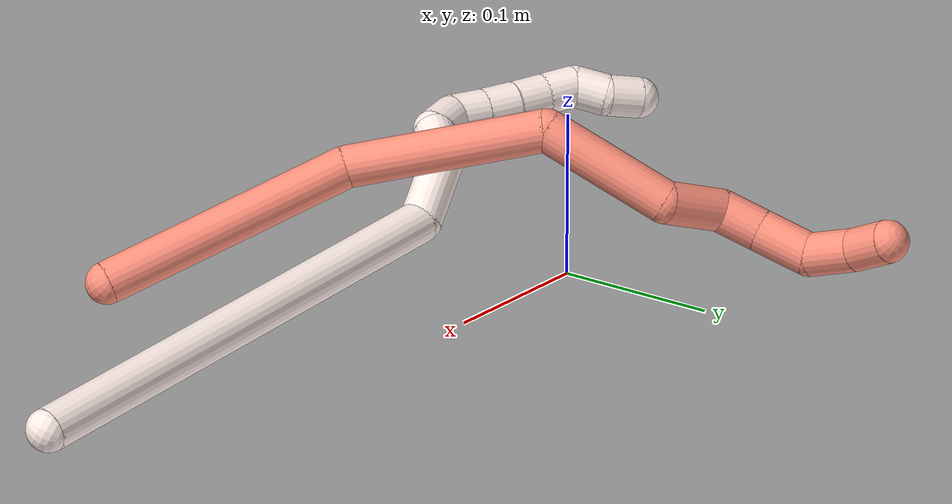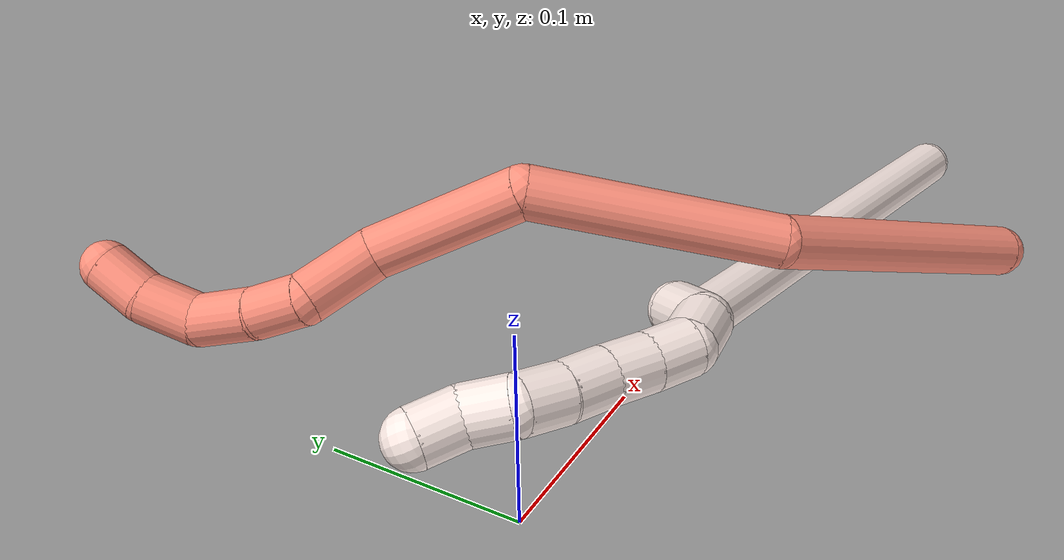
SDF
<sdf version="1.7">
 <world name="default">
  <model name="11">
   <static>0</static>
   <link name="11">
    <collision name="collision-cylinder-e_1_1_4">
     <pose>-0.129999 0.020796 -0.059951 -2.8077 -1.1167 2.61459</pose>
     <geometry><cylinder><radius>0.0125</radius><length>0.28932</length></cylinder></geometry>
     <surface>
      <friction><ode><mu>1.16</mu><mu2>1.16</mu2><slip1>0</slip1><slip2>0</slip2></ode></friction>
      <contact><ode><kp>1e+06</kp><kd>1</kd><max_vel>0</max_vel><min_depth>0.001</min_depth></ode></contact>
     </surface>
    </collision>
    <visual name="visual-cylinder-e_1_1_4">
     <pose>-0.129999 0.020796 -0.059951 -2.8077 -1.1167 2.61459</pose>
     <geometry><cylinder><radius>0.0125</radius><length>0.28932</length></cylinder></geometry>
     <material><ambient>1 0.933333 0.909804 1</ambient></material>
    </visual>
    <collision name="collision-cylinder-e_2_4_5">
     <pose>-0.278462 0.051657 -0.116763 -1.26849 -1.0519 0.807177</pose>
     <geometry><cylinder><radius>0.0125</radius><length>0.042523</length></cylinder></geometry>
     <surface>
      <friction><ode><mu>1.16</mu><mu2>1.16</mu2><slip1>0</slip1><slip2>0</slip2></ode></friction>
      <contact><ode><kp>1e+06</kp><kd>1</kd><max_vel>0</max_vel><min_depth>0.001</min_depth></ode></contact>
     </surface>
    </collision>
    <visual name="visual-cylinder-e_2_4_5">
     <pose>-0.278462 0.051657 -0.116763 -1.26849 -1.0519 0.807177</pose>
     <geometry><cylinder><radius>0.0125</radius><length>0.042523</length></cylinder></geometry>
     <material><ambient>1 0.933333 0.909804 1</ambient></material>
    </visual>
    <collision name="collision-cylinder-e_3_5_6">
     <pose>-0.307627 0.060609 -0.107226 0.172423 -1.02542 -0.097225</pose>
     <geometry><cylinder><radius>0.0125</radius><length>0.025039</length></cylinder></geometry>
     <surface>
      <friction><ode><mu>1.16</mu><mu2>1.16</mu2><slip1>0</slip1><slip2>0</slip2></ode></friction>
      <contact><ode><kp>1e+06</kp><kd>1</kd><max_vel>0</max_vel><min_depth>0.001</min_depth></ode></contact>
     </surface>
    </collision>
    <visual name="visual-cylinder-e_3_5_6">
     <pose>-0.307627 0.060609 -0.107226 0.172423 -1.02542 -0.097225</pose>
     <geometry><cylinder><radius>0.0125</radius><length>0.025039</length></cylinder></geometry>
     <material><ambient>1 0.933333 0.909804 1</ambient></material>
    </visual>
    <collision name="collision-cylinder-e_4_6_7">
     <pose>-0.329246 0.059307 -0.103417 3.06917 -1.33735 -3.04996</pose>
     <geometry><cylinder><radius>0.0125</radius><length>0.02244</length></cylinder></geometry>
     <surface>
      <friction><ode><mu>1.16</mu><mu2>1.16</mu2><slip1>0</slip1><slip2>0</slip2></ode></friction>
      <contact><ode><kp>1e+06</kp><kd>1</kd><max_vel>0</max_vel><min_depth>0.001</min_depth></ode></contact>
     </surface>
    </collision>
    <visual name="visual-cylinder-e_4_6_7">
     <pose>-0.329246 0.059307 -0.103417 3.06917 -1.33735 -3.04996</pose>
     <geometry><cylinder><radius>0.0125</radius><length>0.02244</length></cylinder></geometry>
     <material><ambient>1 0.933333 0.909804 1</ambient></material>
    </visual>
    <collision name="collision-cylinder-e_5_7_8">
     <pose>-0.34696 0.061388 -0.113111 -2.83247 -0.73901 2.37663</pose>
     <geometry><cylinder><radius>0.0125</radius><length>0.020184</length></cylinder></geometry>
     <surface>
      <friction><ode><mu>1.16</mu><mu2>1.16</mu2><slip1>0</slip1><slip2>0</slip2></ode></friction>
      <contact><ode><kp>1e+06</kp><kd>1</kd><max_vel>0</max_vel><min_depth>0.001</min_depth></ode></contact>
     </surface>
    </collision>
    <visual name="visual-cylinder-e_5_7_8">
     <pose>-0.34696 0.061388 -0.113111 -2.83247 -0.73901 2.37663</pose>
     <geometry><cylinder><radius>0.0125</radius><length>0.020184</length></cylinder></geometry>
     <material><ambient>1 0.933333 0.909804 1</ambient></material>
    </visual>
    <collision name="collision-cylinder-e_6_8_9">
     <pose>-0.360613 0.066371 -0.127106 -2.76635 -0.746938 2.23926</pose>
     <geometry><cylinder><radius>0.0125</radius><length>0.020182</length></cylinder></geometry>
     <surface>
      <friction><ode><mu>1.16</mu><mu2>1.16</mu2><slip1>0</slip1><slip2>0</slip2></ode></friction>
      <contact><ode><kp>1e+06</kp><kd>1</kd><max_vel>0</max_vel><min_depth>0.001</min_depth></ode></contact>
     </surface>
    </collision>
    <visual name="visual-cylinder-e_6_8_9">
     <pose>-0.360613 0.066371 -0.127106 -2.76635 -0.746938 2.23926</pose>
     <geometry><cylinder><radius>0.0125</radius><length>0.020182</length></cylinder></geometry>
     <material><ambient>1 0.933333 0.909804 1</ambient></material>
    </visual>
    <collision name="collision-cylinder-e_7_9_10">
     <pose>-0.374732 0.071501 -0.140504 -2.78618 -0.808041 2.3462</pose>
     <geometry><cylinder><radius>0.0125</radius><length>0.020094</length></cylinder></geometry>
     <surface>
      <friction><ode><mu>1.16</mu><mu2>1.16</mu2><slip1>0</slip1><slip2>0</slip2></ode></friction>
      <contact><ode><kp>1e+06</kp><kd>1</kd><max_vel>0</max_vel><min_depth>0.001</min_depth></ode></contact>
     </surface>
    </collision>
    <visual name="visual-cylinder-e_7_9_10">
     <pose>-0.374732 0.071501 -0.140504 -2.78618 -0.808041 2.3462</pose>
     <geometry><cylinder><radius>0.0125</radius><length>0.020094</length></cylinder></geometry>
     <material><ambient>1 0.933333 0.909804 1</ambient></material>
    </visual>
    <collision name="collision-cylinder-e_8_10_11">
     <pose>-0.388757 0.077073 -0.153802 -2.70638 -0.734417 2.0982</pose>
     <geometry><cylinder><radius>0.0125</radius><length>0.020178</length></cylinder></geometry>
     <surface>
      <friction><ode><mu>1.16</mu><mu2>1.16</mu2><slip1>0</slip1><slip2>0</slip2></ode></friction>
      <contact><ode><kp>1e+06</kp><kd>1</kd><max_vel>0</max_vel><min_depth>0.001</min_depth></ode></contact>
     </surface>
    </collision>
    <visual name="visual-cylinder-e_8_10_11">
     <pose>-0.388757 0.077073 -0.153802 -2.70638 -0.734417 2.0982</pose>
     <geometry><cylinder><radius>0.0125</radius><length>0.020178</length></cylinder></geometry>
     <material><ambient>1 0.933333 0.909804 1</ambient></material>
    </visual>
    <collision name="collision-cylinder-e_9_11_12">
     <pose>-0.396568 0.082346 -0.170327 -2.92763 -0.105049 0.910491</pose>
     <geometry><cylinder><radius>0.0125</radius><length>0.020036</length></cylinder></geometry>
     <surface>
      <friction><ode><mu>1.16</mu><mu2>1.16</mu2><slip1>0</slip1><slip2>0</slip2></ode></friction>
      <contact><ode><kp>1e+06</kp><kd>1</kd><max_vel>0</max_vel><min_depth>0.001</min_depth></ode></contact>
     </surface>
    </collision>
    <visual name="visual-cylinder-e_9_11_12">
     <pose>-0.396568 0.082346 -0.170327 -2.92763 -0.105049 0.910491</pose>
     <geometry><cylinder><radius>0.0125</radius><length>0.020036</length></cylinder></geometry>
     <material><ambient>1 0.933333 0.909804 1</ambient></material>
    </visual>
    <collision name="collision-cylinder-e_10_12_2">
     <pose>-0.402648 0.085632 -0.188629 -3.00572 -0.526833 2.64732</pose>
     <geometry><cylinder><radius>0.0125</radius><length>0.020005</length></cylinder></geometry>
     <surface>
      <friction><ode><mu>1.16</mu><mu2>1.16</mu2><slip1>0</slip1><slip2>0</slip2></ode></friction>
      <contact><ode><kp>1e+06</kp><kd>1</kd><max_vel>0</max_vel><min_depth>0.001</min_depth></ode></contact>
     </surface>
    </collision>
    <visual name="visual-cylinder-e_10_12_2">
     <pose>-0.402648 0.085632 -0.188629 -3.00572 -0.526833 2.64732</pose>
     <geometry><cylinder><radius>0.0125</radius><length>0.020005</length></cylinder></geometry>
     <material><ambient>1 0.933333 0.909804 1</ambient></material>
    </visual>
    <collision name="collision-sphere-2">
     <pose>-0.407677 0.086804 -0.197196 0 -0 0</pose>
     <geometry><sphere><radius>0.0125</radius></sphere></geometry>
     <surface>
      <friction><ode><mu>1.16</mu><mu2>1.16</mu2><slip1>0</slip1><slip2>0</slip2></ode></friction>
      <contact><ode><kp>1e+06</kp><kd>1</kd><max_vel>0</max_vel><min_depth>0.001</min_depth></ode></contact>
     </surface>
    </collision>
    <visual name="visual-sphere-2">
     <pose>-0.407677 0.086804 -0.197196 0 -0 0</pose>
     <geometry><sphere><radius>0.0125</radius></sphere></geometry>
     <material><ambient>1 0.933333 0.909804 1</ambient></material>
    </visual>
    <collision name="collision-sphere-12">
     <pose>-0.397619 0.084461 -0.180063 0 -0 0</pose>
     <geometry><sphere><radius>0.0125</radius></sphere></geometry>
     <surface>
      <friction><ode><mu>1.16</mu><mu2>1.16</mu2><slip1>0</slip1><slip2>0</slip2></ode></friction>
      <contact><ode><kp>1e+06</kp><kd>1</kd><max_vel>0</max_vel><min_depth>0.001</min_depth></ode></contact>
     </surface>
    </collision>
    <visual name="visual-sphere-12">
     <pose>-0.397619 0.084461 -0.180063 0 -0 0</pose>
     <geometry><sphere><radius>0.0125</radius></sphere></geometry>
     <material><ambient>1 0.933333 0.909804 1</ambient></material>
    </visual>
    <collision name="collision-sphere-11">
     <pose>-0.395518 0.08023 -0.160592 0 -0 0</pose>
     <geometry><sphere><radius>0.0125</radius></sphere></geometry>
     <surface>
      <friction><ode><mu>1.16</mu><mu2>1.16</mu2><slip1>0</slip1><slip2>0</slip2></ode></friction>
      <contact><ode><kp>1e+06</kp><kd>1</kd><max_vel>0</max_vel><min_depth>0.001</min_depth></ode></contact>
     </surface>
    </collision>
    <visual name="visual-sphere-11">
     <pose>-0.395518 0.08023 -0.160592 0 -0 0</pose>
     <geometry><sphere><radius>0.0125</radius></sphere></geometry>
     <material><ambient>1 0.933333 0.909804 1</ambient></material>
    </visual>
    <collision name="collision-sphere-10">
     <pose>-0.381996 0.073916 -0.147012 0 -0 0</pose>
     <geometry><sphere><radius>0.0125</radius></sphere></geometry>
     <surface>
      <friction><ode><mu>1.16</mu><mu2>1.16</mu2><slip1>0</slip1><slip2>0</slip2></ode></friction>
      <contact><ode><kp>1e+06</kp><kd>1</kd><max_vel>0</max_vel><min_depth>0.001</min_depth></ode></contact>
     </surface>
    </collision>
    <visual name="visual-sphere-10">
     <pose>-0.381996 0.073916 -0.147012 0 -0 0</pose>
     <geometry><sphere><radius>0.0125</radius></sphere></geometry>
     <material><ambient>1 0.933333 0.909804 1</ambient></material>
    </visual>
    <collision name="collision-sphere-9">
     <pose>-0.367469 0.069085 -0.133996 0 -0 0</pose>
     <geometry><sphere><radius>0.0125</radius></sphere></geometry>
     <surface>
      <friction><ode><mu>1.16</mu><mu2>1.16</mu2><slip1>0</slip1><slip2>0</slip2></ode></friction>
      <contact><ode><kp>1e+06</kp><kd>1</kd><max_vel>0</max_vel><min_depth>0.001</min_depth></ode></contact>
     </surface>
    </collision>
    <visual name="visual-sphere-9">
     <pose>-0.367469 0.069085 -0.133996 0 -0 0</pose>
     <geometry><sphere><radius>0.0125</radius></sphere></geometry>
     <material><ambient>1 0.933333 0.909804 1</ambient></material>
    </visual>
    <collision name="collision-sphere-4">
     <pose>-0.259999 0.041591 -0.119902 0 -0 0</pose>
     <geometry><sphere><radius>0.0125</radius></sphere></geometry>
     <surface>
      <friction><ode><mu>1.16</mu><mu2>1.16</mu2><slip1>0</slip1><slip2>0</slip2></ode></friction>
      <contact><ode><kp>1e+06</kp><kd>1</kd><max_vel>0</max_vel><min_depth>0.001</min_depth></ode></contact>
     </surface>
    </collision>
    <visual name="visual-sphere-4">
     <pose>-0.259999 0.041591 -0.119902 0 -0 0</pose>
     <geometry><sphere><radius>0.0125</radius></sphere></geometry>
     <material><ambient>1 0.933333 0.909804 1</ambient></material>
    </visual>
    <collision name="collision-sphere-1">
     <geometry><sphere><radius>0.0125</radius></sphere></geometry>
     <surface>
      <friction><ode><mu>1.16</mu><mu2>1.16</mu2><slip1>0</slip1><slip2>0</slip2></ode></friction>
      <contact><ode><kp>1e+06</kp><kd>1</kd><max_vel>0</max_vel><min_depth>0.001</min_depth></ode></contact>
     </surface>
    </collision>
    <visual name="visual-sphere-1">
     <geometry><sphere><radius>0.0125</radius></sphere></geometry>
     <material><ambient>1 0.933333 0.909804 1</ambient></material>
    </visual>
    <collision name="collision-sphere-8">
     <pose>-0.353757 0.063658 -0.120217 0 -0 0</pose>
     <geometry><sphere><radius>0.0125</radius></sphere></geometry>
     <surface>
      <friction><ode><mu>1.16</mu><mu2>1.16</mu2><slip1>0</slip1><slip2>0</slip2></ode></friction>
      <contact><ode><kp>1e+06</kp><kd>1</kd><max_vel>0</max_vel><min_depth>0.001</min_depth></ode></contact>
     </surface>
    </collision>
    <visual name="visual-sphere-8">
     <pose>-0.353757 0.063658 -0.120217 0 -0 0</pose>
     <geometry><sphere><radius>0.0125</radius></sphere></geometry>
     <material><ambient>1 0.933333 0.909804 1</ambient></material>
    </visual>
    <collision name="collision-sphere-5">
     <pose>-0.296924 0.061723 -0.113624 0 -0 0</pose>
     <geometry><sphere><radius>0.0125</radius></sphere></geometry>
     <surface>
      <friction><ode><mu>1.16</mu><mu2>1.16</mu2><slip1>0</slip1><slip2>0</slip2></ode></friction>
      <contact><ode><kp>1e+06</kp><kd>1</kd><max_vel>0</max_vel><min_depth>0.001</min_depth></ode></contact>
     </surface>
    </collision>
    <visual name="visual-sphere-5">
     <pose>-0.296924 0.061723 -0.113624 0 -0 0</pose>
     <geometry><sphere><radius>0.0125</radius></sphere></geometry>
     <material><ambient>1 0.933333 0.909804 1</ambient></material>
    </visual>
    <collision name="collision-sphere-6">
     <pose>-0.318331 0.059495 -0.100828 0 -0 0</pose>
     <geometry><sphere><radius>0.0125</radius></sphere></geometry>
     <surface>
      <friction><ode><mu>1.16</mu><mu2>1.16</mu2><slip1>0</slip1><slip2>0</slip2></ode></friction>
      <contact><ode><kp>1e+06</kp><kd>1</kd><max_vel>0</max_vel><min_depth>0.001</min_depth></ode></contact>
     </surface>
    </collision>
    <visual name="visual-sphere-6">
     <pose>-0.318331 0.059495 -0.100828 0 -0 0</pose>
     <geometry><sphere><radius>0.0125</radius></sphere></geometry>
     <material><ambient>1 0.933333 0.909804 1</ambient></material>
    </visual>
    <collision name="collision-sphere-7">
     <pose>-0.340162 0.059119 -0.106006 0 -0 0</pose>
     <geometry><sphere><radius>0.0125</radius></sphere></geometry>
     <surface>
      <friction><ode><mu>1.16</mu><mu2>1.16</mu2><slip1>0</slip1><slip2>0</slip2></ode></friction>
      <contact><ode><kp>1e+06</kp><kd>1</kd><max_vel>0</max_vel><min_depth>0.001</min_depth></ode></contact>
     </surface>
    </collision>
    <visual name="visual-sphere-7">
     <pose>-0.340162 0.059119 -0.106006 0 -0 0</pose>
     <geometry><sphere><radius>0.0125</radius></sphere></geometry>
     <material><ambient>1 0.933333 0.909804 1</ambient></material>
    </visual>
    <inertial>
     <pose>-0.220398 0.03999 -0.090554 0 -0 0</pose>
     <mass>0.5</mass>
     <inertia>
      <ixx>-0.000345</ixx>
      <ixy>0</ixy>
      <ixz>0</ixz>
      <iyy>0.002436</iyy>
      <iyz>0</iyz>
      <izz>0.001527</izz>
     </inertia>
    </inertial>
   </link>
   <pose>0.383001 -0.065185 0.011478 1.0813 0.243458 0.340668</pose>
  </model>
  <model name="16">
   <static>0</static>
   <link name="16">
    <collision name="collision-cylinder-e_1_1_4">
     <pose>-0.066806 0.009936 0.036569 -0.265304 -1.05482 0.155125</pose>
     <geometry><cylinder><radius>0.0125</radius><length>0.15361</length></cylinder></geometry>
     <surface>
      <friction><ode><mu>1.16</mu><mu2>1.16</mu2><slip1>0</slip1><slip2>0</slip2></ode></friction>
      <contact><ode><kp>1e+06</kp><kd>1</kd><max_vel>0</max_vel><min_depth>0.001</min_depth></ode></contact>
     </surface>
    </collision>
    <visual name="visual-cylinder-e_1_1_4">
     <pose>-0.066806 0.009936 0.036569 -0.265304 -1.05482 0.155125</pose>
     <geometry><cylinder><radius>0.0125</radius><length>0.15361</length></cylinder></geometry>
     <material><ambient>1 0.576471 0.494118 1</ambient></material>
    </visual>
    <collision name="collision-cylinder-e_2_4_5">
     <pose>-0.166584 0.044042 0.116519 -0.508317 -0.586126 0.156456</pose>
     <geometry><cylinder><radius>0.0125</radius><length>0.11922</length></cylinder></geometry>
     <surface>
      <friction><ode><mu>1.16</mu><mu2>1.16</mu2><slip1>0</slip1><slip2>0</slip2></ode></friction>
      <contact><ode><kp>1e+06</kp><kd>1</kd><max_vel>0</max_vel><min_depth>0.001</min_depth></ode></contact>
     </surface>
    </collision>
    <visual name="visual-cylinder-e_2_4_5">
     <pose>-0.166584 0.044042 0.116519 -0.508317 -0.586126 0.156456</pose>
     <geometry><cylinder><radius>0.0125</radius><length>0.11922</length></cylinder></geometry>
     <material><ambient>1 0.576471 0.494118 1</ambient></material>
    </visual>
    <collision name="collision-cylinder-e_3_5_6">
     <pose>-0.211058 0.104122 0.171443 -1.25981 -0.295954 0.216481</pose>
     <geometry><cylinder><radius>0.0125</radius><length>0.078867</length></cylinder></geometry>
     <surface>
      <friction><ode><mu>1.16</mu><mu2>1.16</mu2><slip1>0</slip1><slip2>0</slip2></ode></friction>
      <contact><ode><kp>1e+06</kp><kd>1</kd><max_vel>0</max_vel><min_depth>0.001</min_depth></ode></contact>
     </surface>
    </collision>
    <visual name="visual-cylinder-e_3_5_6">
     <pose>-0.211058 0.104122 0.171443 -1.25981 -0.295954 0.216481</pose>
     <geometry><cylinder><radius>0.0125</radius><length>0.078867</length></cylinder></geometry>
     <material><ambient>1 0.576471 0.494118 1</ambient></material>
    </visual>
    <collision name="collision-cylinder-e_4_6_7">
     <pose>-0.238298 0.150687 0.183452 -1.52699 -0.975266 0.939439</pose>
     <geometry><cylinder><radius>0.0125</radius><length>0.038024</length></cylinder></geometry>
     <surface>
      <friction><ode><mu>1.16</mu><mu2>1.16</mu2><slip1>0</slip1><slip2>0</slip2></ode></friction>
      <contact><ode><kp>1e+06</kp><kd>1</kd><max_vel>0</max_vel><min_depth>0.001</min_depth></ode></contact>
     </surface>
    </collision>
    <visual name="visual-cylinder-e_4_6_7">
     <pose>-0.238298 0.150687 0.183452 -1.52699 -0.975266 0.939439</pose>
     <geometry><cylinder><radius>0.0125</radius><length>0.038024</length></cylinder></geometry>
     <material><ambient>1 0.576471 0.494118 1</ambient></material>
    </visual>
    <collision name="collision-cylinder-e_5_7_8">
     <pose>-0.258063 0.17255 0.188733 -1.16508 -0.318787 0.211028</pose>
     <geometry><cylinder><radius>0.0125</radius><length>0.025692</length></cylinder></geometry>
     <surface>
      <friction><ode><mu>1.16</mu><mu2>1.16</mu2><slip1>0</slip1><slip2>0</slip2></ode></friction>
      <contact><ode><kp>1e+06</kp><kd>1</kd><max_vel>0</max_vel><min_depth>0.001</min_depth></ode></contact>
     </surface>
    </collision>
    <visual name="visual-cylinder-e_5_7_8">
     <pose>-0.258063 0.17255 0.188733 -1.16508 -0.318787 0.211028</pose>
     <geometry><cylinder><radius>0.0125</radius><length>0.025692</length></cylinder></geometry>
     <material><ambient>1 0.576471 0.494118 1</ambient></material>
    </visual>
    <collision name="collision-cylinder-e_6_8_9">
     <pose>-0.265139 0.197386 0.201362 -1.05019 -0.191751 0.111317</pose>
     <geometry><cylinder><radius>0.0125</radius><length>0.032004</length></cylinder></geometry>
     <surface>
      <friction><ode><mu>1.16</mu><mu2>1.16</mu2><slip1>0</slip1><slip2>0</slip2></ode></friction>
      <contact><ode><kp>1e+06</kp><kd>1</kd><max_vel>0</max_vel><min_depth>0.001</min_depth></ode></contact>
     </surface>
    </collision>
    <visual name="visual-cylinder-e_6_8_9">
     <pose>-0.265139 0.197386 0.201362 -1.05019 -0.191751 0.111317</pose>
     <geometry><cylinder><radius>0.0125</radius><length>0.032004</length></cylinder></geometry>
     <material><ambient>1 0.576471 0.494118 1</ambient></material>
    </visual>
    <collision name="collision-cylinder-e_7_9_10">
     <pose>-0.272188 0.216933 0.221354 -0.452441 -0.287186 0.066532</pose>
     <geometry><cylinder><radius>0.0125</radius><length>0.028239</length></cylinder></geometry>
     <surface>
      <friction><ode><mu>1.16</mu><mu2>1.16</mu2><slip1>0</slip1><slip2>0</slip2></ode></friction>
      <contact><ode><kp>1e+06</kp><kd>1</kd><max_vel>0</max_vel><min_depth>0.001</min_depth></ode></contact>
     </surface>
    </collision>
    <visual name="visual-cylinder-e_7_9_10">
     <pose>-0.272188 0.216933 0.221354 -0.452441 -0.287186 0.066532</pose>
     <geometry><cylinder><radius>0.0125</radius><length>0.028239</length></cylinder></geometry>
     <material><ambient>1 0.576471 0.494118 1</ambient></material>
    </visual>
    <collision name="collision-cylinder-e_8_10_2">
     <pose>-0.277184 0.225993 0.24525 -0.261789 -0.081969 0.010797</pose>
     <geometry><cylinder><radius>0.0125</radius><length>0.024343</length></cylinder></geometry>
     <surface>
      <friction><ode><mu>1.16</mu><mu2>1.16</mu2><slip1>0</slip1><slip2>0</slip2></ode></friction>
      <contact><ode><kp>1e+06</kp><kd>1</kd><max_vel>0</max_vel><min_depth>0.001</min_depth></ode></contact>
     </surface>
    </collision>
    <visual name="visual-cylinder-e_8_10_2">
     <pose>-0.277184 0.225993 0.24525 -0.261789 -0.081969 0.010797</pose>
     <geometry><cylinder><radius>0.0125</radius><length>0.024343</length></cylinder></geometry>
     <material><ambient>1 0.576471 0.494118 1</ambient></material>
    </visual>
    <collision name="collision-sphere-2">
     <pose>-0.278181 0.229132 0.256967 0 -0 0</pose>
     <geometry><sphere><radius>0.0125</radius></sphere></geometry>
     <surface>
      <friction><ode><mu>1.16</mu><mu2>1.16</mu2><slip1>0</slip1><slip2>0</slip2></ode></friction>
      <contact><ode><kp>1e+06</kp><kd>1</kd><max_vel>0</max_vel><min_depth>0.001</min_depth></ode></contact>
     </surface>
    </collision>
    <visual name="visual-sphere-2">
     <pose>-0.278181 0.229132 0.256967 0 -0 0</pose>
     <geometry><sphere><radius>0.0125</radius></sphere></geometry>
     <material><ambient>1 0.576471 0.494118 1</ambient></material>
    </visual>
    <collision name="collision-sphere-10">
     <pose>-0.276188 0.222853 0.233533 0 -0 0</pose>
     <geometry><sphere><radius>0.0125</radius></sphere></geometry>
     <surface>
      <friction><ode><mu>1.16</mu><mu2>1.16</mu2><slip1>0</slip1><slip2>0</slip2></ode></friction>
      <contact><ode><kp>1e+06</kp><kd>1</kd><max_vel>0</max_vel><min_depth>0.001</min_depth></ode></contact>
     </surface>
    </collision>
    <visual name="visual-sphere-10">
     <pose>-0.276188 0.222853 0.233533 0 -0 0</pose>
     <geometry><sphere><radius>0.0125</radius></sphere></geometry>
     <material><ambient>1 0.576471 0.494118 1</ambient></material>
    </visual>
    <collision name="collision-sphere-9">
     <pose>-0.268189 0.211014 0.209175 0 -0 0</pose>
     <geometry><sphere><radius>0.0125</radius></sphere></geometry>
     <surface>
      <friction><ode><mu>1.16</mu><mu2>1.16</mu2><slip1>0</slip1><slip2>0</slip2></ode></friction>
      <contact><ode><kp>1e+06</kp><kd>1</kd><max_vel>0</max_vel><min_depth>0.001</min_depth></ode></contact>
     </surface>
    </collision>
    <visual name="visual-sphere-9">
     <pose>-0.268189 0.211014 0.209175 0 -0 0</pose>
     <geometry><sphere><radius>0.0125</radius></sphere></geometry>
     <material><ambient>1 0.576471 0.494118 1</ambient></material>
    </visual>
    <collision name="collision-sphere-4">
     <pose>-0.133612 0.019872 0.073138 0 -0 0</pose>
     <geometry><sphere><radius>0.0125</radius></sphere></geometry>
     <surface>
      <friction><ode><mu>1.16</mu><mu2>1.16</mu2><slip1>0</slip1><slip2>0</slip2></ode></friction>
      <contact><ode><kp>1e+06</kp><kd>1</kd><max_vel>0</max_vel><min_depth>0.001</min_depth></ode></contact>
     </surface>
    </collision>
    <visual name="visual-sphere-4">
     <pose>-0.133612 0.019872 0.073138 0 -0 0</pose>
     <geometry><sphere><radius>0.0125</radius></sphere></geometry>
     <material><ambient>1 0.576471 0.494118 1</ambient></material>
    </visual>
    <collision name="collision-sphere-1">
     <geometry><sphere><radius>0.0125</radius></sphere></geometry>
     <surface>
      <friction><ode><mu>1.16</mu><mu2>1.16</mu2><slip1>0</slip1><slip2>0</slip2></ode></friction>
      <contact><ode><kp>1e+06</kp><kd>1</kd><max_vel>0</max_vel><min_depth>0.001</min_depth></ode></contact>
     </surface>
    </collision>
    <visual name="visual-sphere-1">
     <geometry><sphere><radius>0.0125</radius></sphere></geometry>
     <material><ambient>1 0.576471 0.494118 1</ambient></material>
    </visual>
    <collision name="collision-sphere-8">
     <pose>-0.26209 0.183758 0.193548 0 -0 0</pose>
     <geometry><sphere><radius>0.0125</radius></sphere></geometry>
     <surface>
      <friction><ode><mu>1.16</mu><mu2>1.16</mu2><slip1>0</slip1><slip2>0</slip2></ode></friction>
      <contact><ode><kp>1e+06</kp><kd>1</kd><max_vel>0</max_vel><min_depth>0.001</min_depth></ode></contact>
     </surface>
    </collision>
    <visual name="visual-sphere-8">
     <pose>-0.26209 0.183758 0.193548 0 -0 0</pose>
     <geometry><sphere><radius>0.0125</radius></sphere></geometry>
     <material><ambient>1 0.576471 0.494118 1</ambient></material>
    </visual>
    <collision name="collision-sphere-5">
     <pose>-0.199557 0.068212 0.159901 0 -0 0</pose>
     <geometry><sphere><radius>0.0125</radius></sphere></geometry>
     <surface>
      <friction><ode><mu>1.16</mu><mu2>1.16</mu2><slip1>0</slip1><slip2>0</slip2></ode></friction>
      <contact><ode><kp>1e+06</kp><kd>1</kd><max_vel>0</max_vel><min_depth>0.001</min_depth></ode></contact>
     </surface>
    </collision>
    <visual name="visual-sphere-5">
     <pose>-0.199557 0.068212 0.159901 0 -0 0</pose>
     <geometry><sphere><radius>0.0125</radius></sphere></geometry>
     <material><ambient>1 0.576471 0.494118 1</ambient></material>
    </visual>
    <collision name="collision-sphere-6">
     <pose>-0.222559 0.140032 0.182985 0 -0 0</pose>
     <geometry><sphere><radius>0.0125</radius></sphere></geometry>
     <surface>
      <friction><ode><mu>1.16</mu><mu2>1.16</mu2><slip1>0</slip1><slip2>0</slip2></ode></friction>
      <contact><ode><kp>1e+06</kp><kd>1</kd><max_vel>0</max_vel><min_depth>0.001</min_depth></ode></contact>
     </surface>
    </collision>
    <visual name="visual-sphere-6">
     <pose>-0.222559 0.140032 0.182985 0 -0 0</pose>
     <geometry><sphere><radius>0.0125</radius></sphere></geometry>
     <material><ambient>1 0.576471 0.494118 1</ambient></material>
    </visual>
    <collision name="collision-sphere-7">
     <pose>-0.254037 0.161341 0.183919 0 -0 0</pose>
     <geometry><sphere><radius>0.0125</radius></sphere></geometry>
     <surface>
      <friction><ode><mu>1.16</mu><mu2>1.16</mu2><slip1>0</slip1><slip2>0</slip2></ode></friction>
      <contact><ode><kp>1e+06</kp><kd>1</kd><max_vel>0</max_vel><min_depth>0.001</min_depth></ode></contact>
     </surface>
    </collision>
    <visual name="visual-sphere-7">
     <pose>-0.254037 0.161341 0.183919 0 -0 0</pose>
     <geometry><sphere><radius>0.0125</radius></sphere></geometry>
     <material><ambient>1 0.576471 0.494118 1</ambient></material>
    </visual>
    <inertial>
     <pose>-0.170757 0.086192 0.12704 0 -0 0</pose>
     <mass>0.5</mass>
     <inertia>
      <ixx>0.000358</ixx>
      <ixy>0</ixy>
      <ixz>0</ixz>
      <iyy>0.000538</iyy>
      <iyz>0</iyz>
      <izz>0.000239</izz>
     </inertia>
    </inertial>
   </link>
   <pose>0.254861 -0.136741 0.040348 -0.884034 0.152206 -0.042942</pose>
  </model>
 </world>
</sdf>
